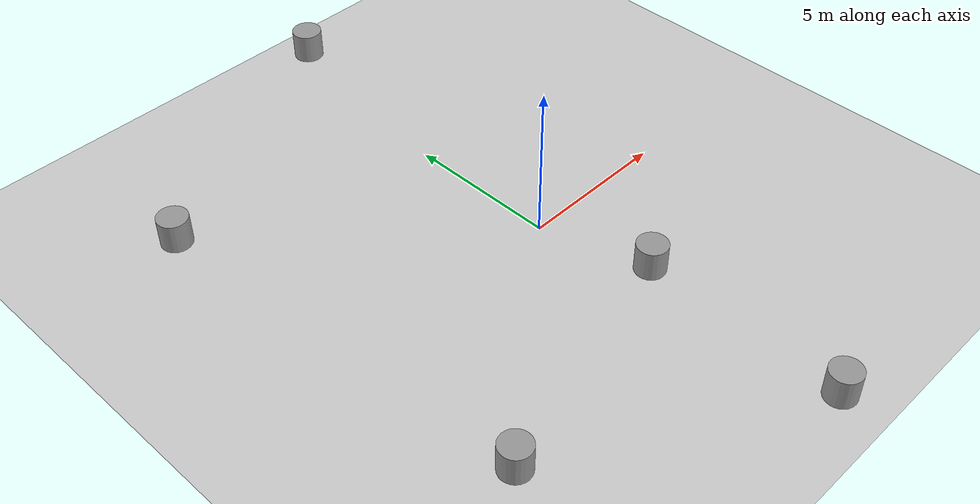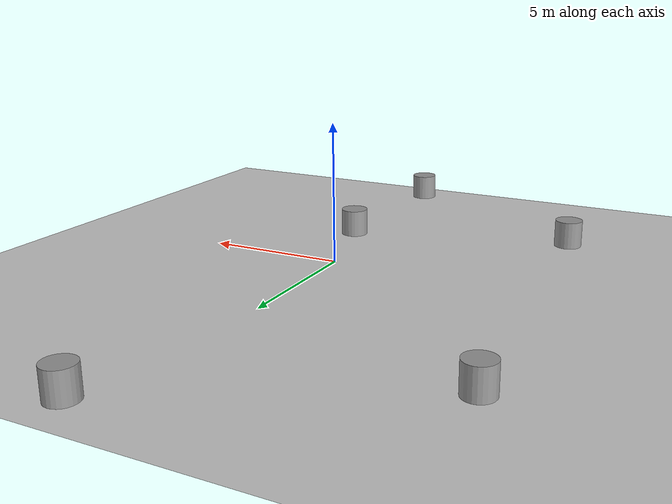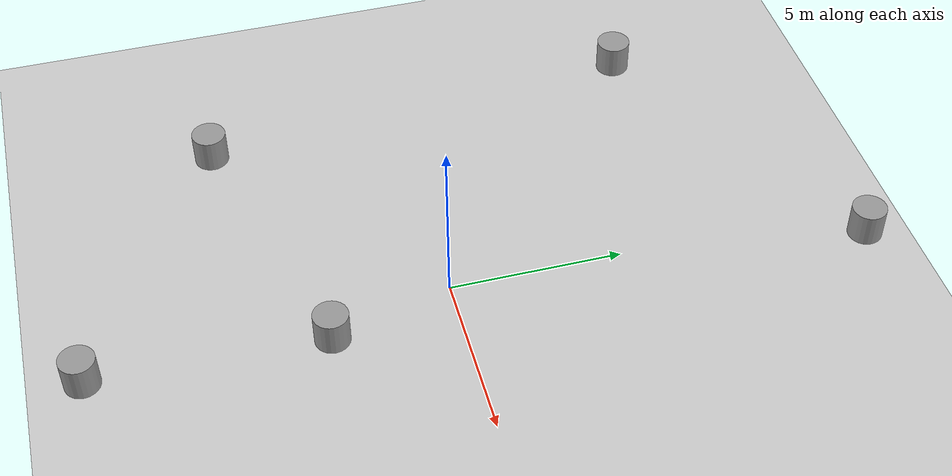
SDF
<sdf version="1.6">
 <world name="default">
  <light name="sun" type="directional">
   <pose>0 0 10 0 -0 0</pose>
   <diffuse>0.8 0.8 0.8 1</diffuse>
   <specular>0.2 0.2 0.2 1</specular>
   <attenuation>
    <range>1000</range>
    <constant>0.9</constant>
    <linear>0.01</linear>
    <quadratic>0.001</quadratic>
   </attenuation>
   <direction>-0.5 0.1 -0.9</direction>
  </light>
  <gravity>0 0 -9.8</gravity>
  <magnetic_field>6e-06 2.3e-05 -4.2e-05</magnetic_field>
  <atmosphere type="adiabatic"/>
  <physics name="default_physics" default="0" type="ode">
   <max_step_size>0.001</max_step_size>
   <real_time_factor>1</real_time_factor>
   <real_time_update_rate>1000</real_time_update_rate>
  </physics>
  <scene><ambient>0.4 0.4 0.4 1</ambient><background>0.7 0.7 0.7 1</background><shadows>1</shadows></scene>
  <spherical_coordinates>
   <surface_model>EARTH_WGS84</surface_model>
   <latitude_deg>0</latitude_deg>
   <longitude_deg>0</longitude_deg>
   <elevation>0</elevation>
   <heading_deg>0</heading_deg>
  </spherical_coordinates>
  <model name="my_ground_plane">
   <static>1</static>
   <link name="link">
    <collision name="collision">
     <geometry><plane><normal>0 0 1</normal><size>100 100</size></plane></geometry>
     <surface><friction><ode><mu>100</mu><mu2>50</mu2></ode></friction></surface>
    </collision>
    <visual name="visual">
     <cast_shadows>0</cast_shadows>
     <geometry><plane><normal>0 0 1</normal><size>25 25</size></plane></geometry>
     <material>
      <script>
       <uri>model://my_ground_plane/materials/scripts</uri>
       <uri>model://my_ground_plane/materials/textures</uri>
       <name>MyGroundPlane/Image</name>
      </script>
     </material>
    </visual>
   </link>
   <pose>-0.492392 0.861814 0 0 -0 0</pose>
  </model>
  <model name="unit_cylinder_0">
   <pose>1.01583 12.0647 0.499993 -3e-06 2e-06 0</pose>
   <link name="link">
    <inertial>
     <mass>1</mass>
     <inertia><ixx>0.145833</ixx><ixy>0</ixy><ixz>0</ixz><iyy>0.145833</iyy><iyz>0</iyz><izz>0.125</izz></inertia>
    </inertial>
    <collision name="collision">
     <geometry><cylinder><radius>0.5</radius><length>1</length></cylinder></geometry>
    </collision>
    <visual name="visual">
     <geometry><cylinder><radius>0.5</radius><length>1</length></cylinder></geometry>
     <material>
      <script><name>Gazebo/Grey</name><uri>file://media/materials/scripts/gazebo.material</uri></script>
     </material>
    </visual>
   </link>
  </model>
  <model name="unit_cylinder">
   <pose>-8.02094 7.39436 0.499998 3e-06 -4e-06 0</pose>
   <link name="link">
    <inertial>
     <mass>1</mass>
     <inertia><ixx>0.145833</ixx><ixy>0</ixy><ixz>0</ixz><iyy>0.145833</iyy><iyz>0</iyz><izz>0.125</izz></inertia>
    </inertial>
    <collision name="collision">
     <geometry><cylinder><radius>0.5</radius><length>1</length></cylinder></geometry>
    </collision>
    <visual name="visual">
     <geometry><cylinder><radius>0.5</radius><length>1</length></cylinder></geometry>
     <material>
      <script><name>Gazebo/Grey</name><uri>file://media/materials/scripts/gazebo.material</uri></script>
     </material>
    </visual>
   </link>
  </model>
  <model name="unit_cylinder_2">
   <pose>-7.01598 -5.62207 0.499992 -3e-06 -4e-06 -0</pose>
   <link name="link">
    <inertial>
     <mass>1</mass>
     <inertia><ixx>0.145833</ixx><ixy>0</ixy><ixz>0</ixz><iyy>0.145833</iyy><iyz>0</iyz><izz>0.125</izz></inertia>
    </inertial>
    <collision name="collision">
     <geometry><cylinder><radius>0.5</radius><length>1</length></cylinder></geometry>
    </collision>
    <visual name="visual">
     <geometry><cylinder><radius>0.5</radius><length>1</length></cylinder></geometry>
     <material>
      <script><name>Gazebo/Grey</name><uri>file://media/materials/scripts/gazebo.material</uri></script>
     </material>
    </visual>
   </link>
  </model>
  <model name="unit_cylinder_1">
   <pose>0.781114 -10.1621 0.499993 -3e-06 -4e-06 -0</pose>
   <link name="link">
    <inertial>
     <mass>1</mass>
     <inertia><ixx>0.145833</ixx><ixy>0</ixy><ixz>0</ixz><iyy>0.145833</iyy><iyz>0</iyz><izz>0.125</izz></inertia>
    </inertial>
    <collision name="collision">
     <geometry><cylinder><radius>0.5</radius><length>1</length></cylinder></geometry>
    </collision>
    <visual name="visual">
     <geometry><cylinder><radius>0.5</radius><length>1</length></cylinder></geometry>
     <material>
      <script><name>Gazebo/Grey</name><uri>file://media/materials/scripts/gazebo.material</uri></script>
     </material>
    </visual>
   </link>
  </model>
  <model name="unit_cylinder_3">
   <pose>0.990917 -3.50609 0.499997 3e-06 4e-06 -0</pose>
   <link name="link">
    <inertial>
     <mass>1</mass>
     <inertia><ixx>0.145833</ixx><ixy>0</ixy><ixz>0</ixz><iyy>0.145833</iyy><iyz>0</iyz><izz>0.125</izz></inertia>
    </inertial>
    <collision name="collision">
     <geometry><cylinder><radius>0.5</radius><length>1</length></cylinder></geometry>
    </collision>
    <visual name="visual">
     <geometry><cylinder><radius>0.5</radius><length>1</length></cylinder></geometry>
     <material>
      <script><name>Gazebo/Grey</name><uri>file://media/materials/scripts/gazebo.material</uri></script>
     </material>
    </visual>
   </link>
  </model>
 </world>
</sdf>
